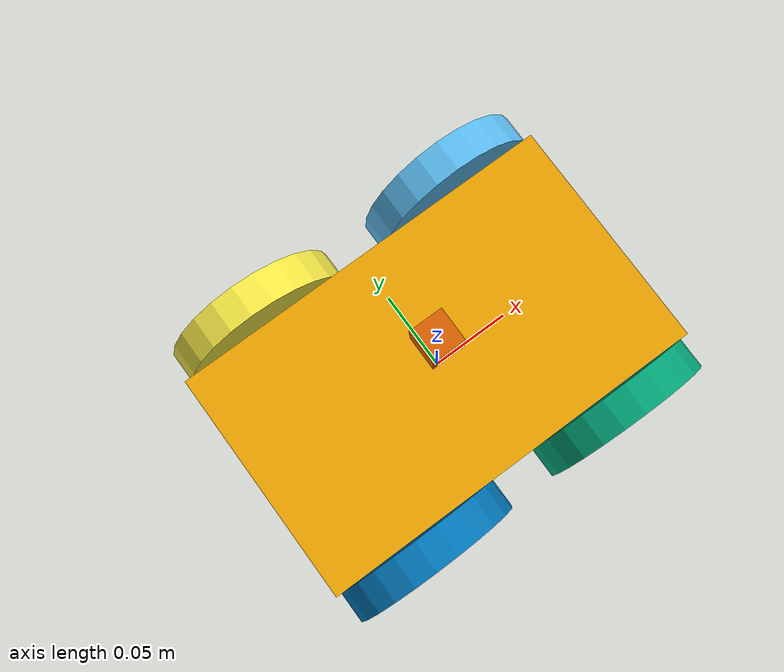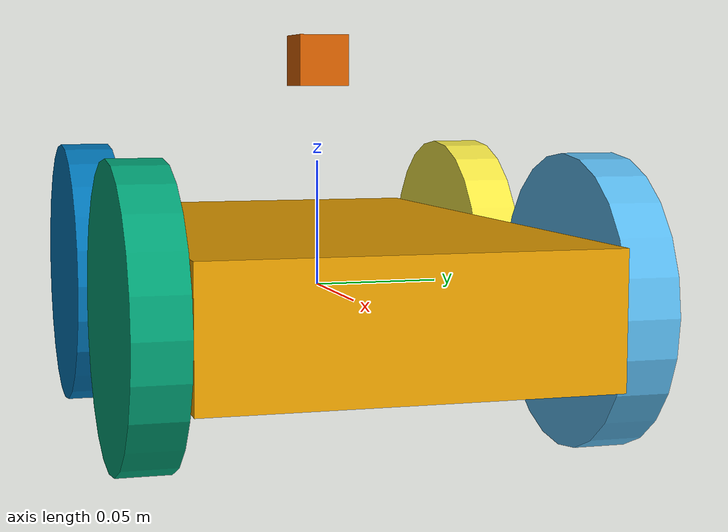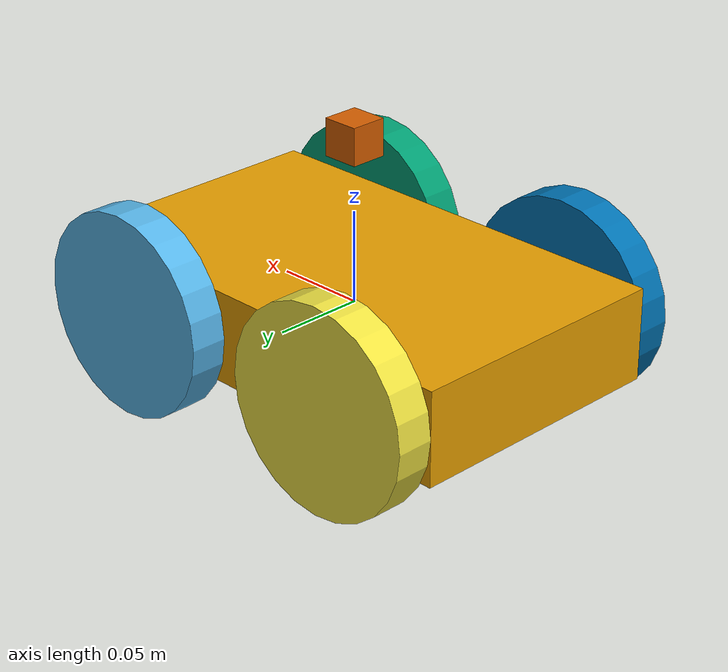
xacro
<?xml version="1.0"?>
<robot name="capybot" xmlns:xacro="http://www.ros.org/wiki/xacro">
    <xacro:include filename="$(find capybot_description)/urdf/macros.xacro" />

    <!-- Start parameters -->
    <xacro:property name="BODY_LENGTH"     value="0.250" />
    <xacro:property name="BODY_WIDTH"      value="0.150" />
    <xacro:property name="BODY_HEIGHT"     value="0.050" />
    <xacro:property name="BODY_MASS"       value="0.500" />

    <xacro:property name="WHEEL_DIAMETER"  value="0.110" />
    <xacro:property name="WHEEL_THICKNESS" value="0.020" />
    <xacro:property name="WHEEL_MASS"      value="0.150" />

    <xacro:property name="LASER_SIZE" value="0.020" />
    <xacro:property name="LASER_MASS" value="0.100" />
    <!-- End parameters -->

    <!-- Start links -->
    <xacro:box_link name="base_link" x="${BODY_LENGTH}" y="${BODY_WIDTH}" z="${BODY_HEIGHT}" m="${BODY_MASS}"/>

    <xacro:wheel name="front_left_wheel" diameter="${WHEEL_DIAMETER}"  thickness="${WHEEL_THICKNESS}"/>
    <xacro:wheel name="front_right_wheel" diameter="${WHEEL_DIAMETER}" thickness="${WHEEL_THICKNESS}"/>
    <xacro:wheel name="back_left_wheel" diameter="${WHEEL_DIAMETER}"   thickness="${WHEEL_THICKNESS}"/>
    <xacro:wheel name="back_right_wheel" diameter="${WHEEL_DIAMETER}"  thickness="${WHEEL_THICKNESS}"/>

	<xacro:laser name="laser" size="${LASER_SIZE}" mass="${LASER_MASS}"/>
    <!-- End links -->

    <!-- Start joints -->
    <joint type="fixed" name="laser_joint">
        <parent link="base_link"/>
        <child link="laser"/>
        <origin xyz="0 0 ${BODY_HEIGHT/2 + LASER_SIZE/2 + WHEEL_DIAMETER/2}"/>
    </joint>

    <xacro:attach_wheel wheel="front_left_wheel" parent="base_link">
        <origin xyz="${BODY_LENGTH/2 - WHEEL_DIAMETER/2} ${BODY_WIDTH/2 + WHEEL_THICKNESS/2} 0"/>
    </xacro:attach_wheel>

    <xacro:attach_wheel wheel="front_right_wheel" parent="base_link">
        <origin xyz="${BODY_LENGTH/2 - WHEEL_DIAMETER/2} -${BODY_WIDTH/2 + WHEEL_THICKNESS/2} 0"/>
    </xacro:attach_wheel>

    <xacro:attach_wheel wheel="back_left_wheel" parent="base_link">
        <origin xyz="-${BODY_LENGTH/2 - WHEEL_DIAMETER/2} ${BODY_WIDTH/2 + WHEEL_THICKNESS/2} 0"/>
    </xacro:attach_wheel>

    <xacro:attach_wheel wheel="back_right_wheel" parent="base_link">
        <origin xyz="-${BODY_LENGTH/2 - WHEEL_DIAMETER/2} -${BODY_WIDTH/2 + WHEEL_THICKNESS/2} 0"/>
    </xacro:attach_wheel>
    <!-- End joints -->

    <gazebo>
        <plugin name="gazebo_ros_control" filename="libgazebo_ros_control.so">
            <robotSimType>gazebo_ros_control/DefaultRobotHWSim</robotSimType>
        </plugin>
    </gazebo>

</robot>

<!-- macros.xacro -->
<robot name="macros" xmlns:xacro="http://www.ros.org/wiki/xacro">
    <xacro:macro name="box_inertia" params="x y z m">
        <inertial>
            <mass value="${m}"/>
            <inertia ixx="${m/12 * (z*z + x*x)}" ixy="0" ixz="0"
                             iyy="${m/12 * (y*y + x*x)}" iyz="0"
                                     izz="${m/12 * (x*x + z*z)}"
            />
        </inertial>
    </xacro:macro>

    <xacro:macro name="cylinder_inertia" params="r h m">
        <inertial>
            <mass value="${m}"/>
            <inertia ixx="${m/12 * (3*r*r + h*h)}" ixy="0" ixz="0"
                             iyy="${m/12 * (3*r*r + h*h)}" iyz="0"
                                    izz="${(m*r*r)/2}"
            />
        </inertial>
    </xacro:macro>

    <xacro:macro name="box_link" params="name x y z m">
        <link name="${name}">
            <visual>
                <geometry>
                    <box size="${x} ${y} ${z}"/>
                </geometry>
            </visual>
            <collision>
                <geometry>
                    <box size="${x} ${y} ${z}"/>
                </geometry>
            </collision>
            <xacro:box_inertia x="${x}" y="${y}" z="${z}" m="${m}"/>
        </link>
    </xacro:macro>

    <xacro:macro name="wheel" params="name diameter thickness">
        <link name="${name}">
            <visual>
                <origin rpy="${pi/2} 0 0"/>
                <geometry>
                    <cylinder length="${thickness}" radius="${diameter/2}"/>
                </geometry>
            </visual>
            <collision>
                <origin rpy="${pi/2} 0 0"/>
                <geometry>
                    <cylinder length="${thickness}" radius="${diameter/2}"/>
                </geometry>
            </collision>
            <xacro:cylinder_inertia r="${diameter/2}" h="${thickness}" m="${WHEEL_MASS}"/>
        </link>
    </xacro:macro>

    <xacro:macro name="attach_wheel" params="wheel parent *origin">
        <joint name="${wheel}_joint" type="continuous">
            <parent link="${parent}"/>
            <child link="${wheel}"/>
            <axis xyz="0 1 0"/>
            <xacro:insert_block name="origin"/>
        </joint>

        <transmission name="${wheel}_transmission">
            <type>transmission_interface/SimpleTransmission</type>
            <joint name="${wheel}_joint">
                <hardwareInterface>hardware_interface/VelocityJointInterface</hardwareInterface>
            </joint>
            <actuator name="${wheel}_motor">
                <hardwareInterface>hardware_interface/VelocityJointInterface</hardwareInterface>
                <mechanicalReduction>1</mechanicalReduction>
            </actuator>
        </transmission>
    </xacro:macro>

    <xacro:macro name="laser" params="name size mass">
      <xacro:box_link name="${name}" x="${size}" y="${size}" z="${size}" m="${mass}"/>
	  <gazebo reference="${name}">
		<sensor type="ray" name="${name}_sensor">
		  <pose>0 0 0 0 0 0</pose>
		  <visualize>true</visualize>
		  <update_rate>40</update_rate>
		  <ray>
			<scan>
			  <horizontal>
				<samples>720</samples>
				<resolution>1</resolution>
				<min_angle>-2.36</min_angle>
				<max_angle>2.36</max_angle>
			  </horizontal>
			</scan>
			<range>
			  <min>0.10</min>
			  <max>30.0</max>
			  <resolution>0.01</resolution>
			</range>
			<noise>
			  <type>gaussian</type>
			  <mean>0.0</mean>
			  <stddev>0.01</stddev>
			</noise>
		  </ray>
		  <plugin name="gazebo_ros_${name}_sensor_controller" filename="libgazebo_ros_laser.so">
			<topicName>/scan</topicName>
			<frameName>${name}</frameName>
		  </plugin>
		</sensor>
	  </gazebo>
	</xacro:macro>

</robot>
